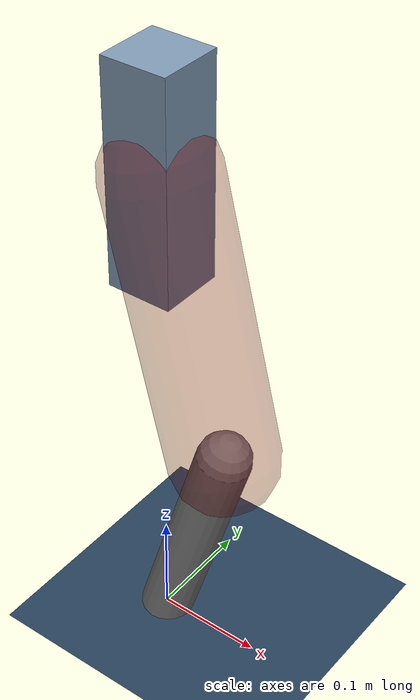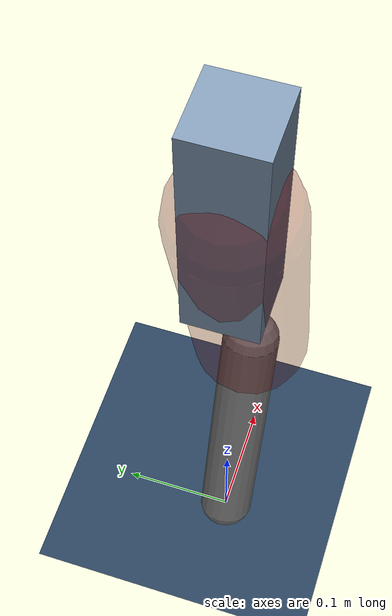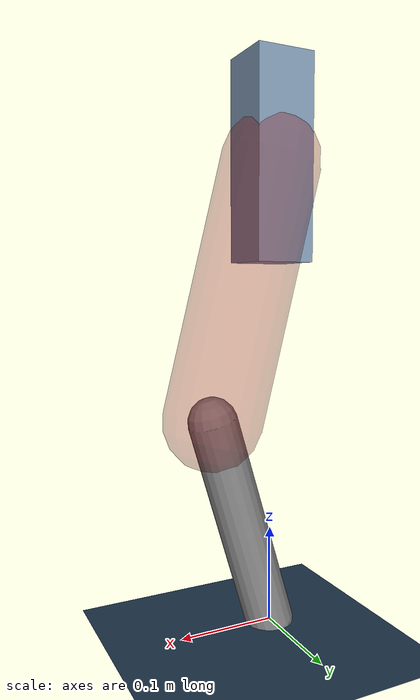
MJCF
<mujoco model="Hopper2D">
	<compiler inertiafromgeom="true" angle="radian" />
	<option timestep="0.001" integrator="implicit" cone="elliptic" solver="Newton" tolerance="1e-10" />

	<default>
		<geom contype="1" conaffinity="1" condim="3" friction="2 0.005 0.0001" solref="0.005 1" />
		<joint limited="true" damping="0.1" />
	</default>

	<asset>
		<texture name="skybox" type="skybox" builtin="gradient" rgb1=".4 .6 .8" rgb2="0 0 0" width="800" height="800" />
		<texture name="grid" type="2d" builtin="checker" rgb1=".1 .2 .3" rgb2=".2 .3 .4" width="300" height="300" mark="edge" markrgb=".2 .3 .4" />
		<material name="ground" texture="grid" texrepeat="1 1" texuniform="true" reflectance="0.1" />
		<material name="leg" rgba="0.5 0.6 0.7 1" />
	</asset>

	<worldbody>

		<geom name="floor" type="plane" size="5 5 0.25" material="ground" />

		<light directional="false" diffuse="0.8 0.8 0.8" specular="0.3 0.3 0.3" pos="0 0 2" dir="0 0 -1" />
		<light mode="targetbodycom" target="base" directional="false" diffuse="0.8 0.8 0.8" specular="0.3 0.3 0.3" pos="0 0 2" dir="0 0 -1" />

		<camera name="fixed" pos="0 -2 1" xyaxes="1 0 0 0 0 1" />
		<camera name="tracking" mode="trackcom" pos="0 -3 1" />

		<body name="root" pos="0 0 0.4748960142924371">
			<joint name="slide_x" type="slide" axis="1 0 0" range="-100 100" />
			<joint name="slide_z" type="slide" axis="0 0 1" range="0 10" />

			<body name="base" pos="0 0 0">
				<geom name="torso" type="box" size="0.03 0.03 0.1" mass="2.677" material="leg" />

				<body name="link1" pos="0 0 0" euler="0 1.3229373037553271 0">
					<joint type="hinge" axis="0 -1 0" pos="0 0 0" name="hinge1" limited="true" range="-3.14 3.14" stiffness="0" damping="0.1" />
					<geom name="thigh" type="capsule" fromto="0 0 0 0.2648719821070216 0 0" size="0.05" rgba="0.5 0 0 0.3" mass="0.8951671534782562" />

					<body name="link2" pos="0.2648719821070216 0 0" euler="0 0.5374018100358467 0">
						<joint type="hinge" axis="0 -1 0" pos="0 0 0" name="hinge2" limited="true" range="-3.14 3.14" stiffness="0" damping="0.1" />
						<geom name="shank" type="capsule" fromto="0 0 0 0.22759218467575723 0 0" size="0.025" mass="0.42397374774060576" />

					</body>
				</body>
			</body>
		</body>
	</worldbody>

	<actuator>
		<motor name="torque1" joint="hinge1" ctrlrange="-116.91576210065776 116.91576210065776" ctrllimited="true" gear="1" />
		<motor name="torque2" joint="hinge2" ctrlrange="-46.668513561237184 46.668513561237184" ctrllimited="true" gear="1" />
	</actuator>
</mujoco>
